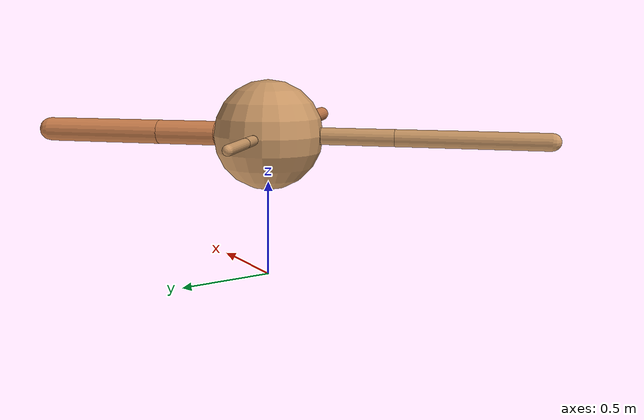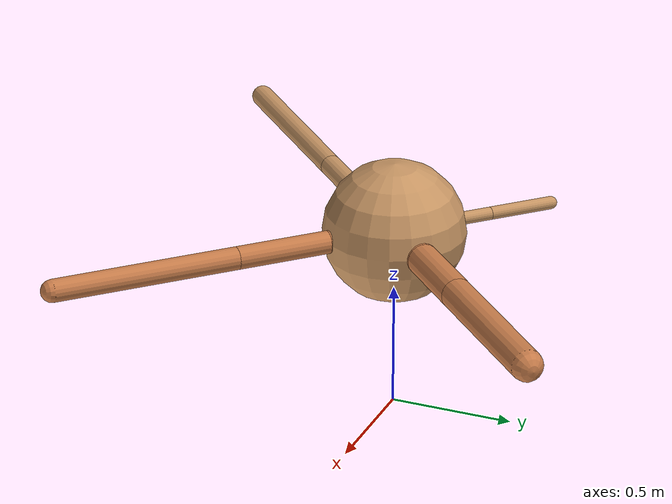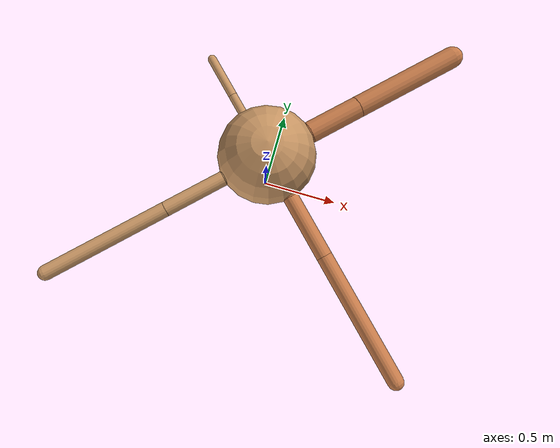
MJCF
<?xml version="1.0" ?>
<mujoco model="ant">

	<compiler angle="degree" coordinate="local" inertiafromgeom="true"/>

	<option integrator="RK4" timestep="0.01"/>

	<custom>

		<numeric data="0.0 0.0 0.55 1.0 0.0 0.0 0.0 0.0 1.0 0.0 -1.0 0.0 -1.0 0.0 1.0" name="init_qpos"/>

	</custom>

	<default>

		<joint armature="1" damping="1" limited="true"/>

		<geom conaffinity="0" condim="3" density="5.0" friction="1.5 0.1 0.1" margin="0.01" rgba="0.8 0.6 0.4 1"/>

	</default>

	<worldbody>

		<body name="torso" pos="0 0 0.75">

			<geom name="torso_geom" pos="0 0 0" size="0.2865469352342213" type="sphere"/>

			<!--joint armature="0" damping="0" limited="false" margin="0.01" name="root" pos="0 0 0" type="free"/-->

			<body name="front_left_leg" pos="0 0 0">

				<geom fromto="0 0 0 0.2 0.2 0" name="aux_1_geom" size="0.06412218794727714" type="capsule" rgba=".8 .5 .3 1"/>

				<body name="aux_1" pos="0.2 0.2 0">

					<joint axis="0 0 1" name="hip_1" pos="0.0 0.0 0.0" range="-40 40" type="hinge"/>

					<geom fromto="0 0 0 0.23002557608374105 0.23002557608374105 0" name="left_leg_geom" size="0.06412218794727714" type="capsule" rgba=".8 .5 .3 1"/>

					<body pos="0.23002557608374105 0.23002557608374105 0" name="front_left_foot">

						<joint axis="-1 1 0" name="ankle_1" pos="0.0 0.0 0.0" range="30 100" type="hinge"/>

						<geom fromto="0 0 0 0.4600511521674821 0.4600511521674821 0" name="left_ankle_geom" size="0.06412218794727714" type="capsule" rgba=".8 .5 .3 1"/>

					</body>

				</body>

			</body>

			<body name="front_right_leg" pos="0 0 0">

				<geom fromto="0 0 0 -0.2 0.2 0" name="aux_2_geom" size="0.025722867016267054" type="capsule"/>

				<body name="aux_2" pos="-0.2 0.2 0">

					<joint axis="0 0 1" name="hip_2" pos="0.0 0.0 0.0" range="-40 40" type="hinge"/>

					<geom fromto="0 0 0 -0.0923912557997996 0.0923912557997996 0" name="right_leg_geom" size="0.025722867016267054" type="capsule"/>

					<body pos="-0.0923912557997996 0.0923912557997996 0" name="front_right_foot">

						<joint axis="1 1 0" name="ankle_2" pos="0.0 0.0 0.0" range="-100 -30" type="hinge"/>

						<geom fromto="0 0 0 -0.1847825115995992 0.1847825115995992 0" name="right_ankle_geom" size="0.025722867016267054" type="capsule"/>

					</body>

				</body>

			</body>

			<body name="left_back_leg" pos="0 0 0">

				<geom fromto="0 0 0 -0.2 -0.2 0" name="aux_3_geom" size="0.04375663014307733" type="capsule"/>

				<body name="aux_3" pos="-0.2 -0.2 0">

					<joint axis="0 0 1" name="hip_3" pos="0.0 0.0 0.0" range="-40 40" type="hinge"/>

					<geom fromto="0 0 0 -0.2632819778351963 -0.2632819778351963 0" name="back_leg_geom" size="0.04375663014307733" type="capsule"/>

					<body pos="-0.2632819778351963 -0.2632819778351963 0" name="left_back_foot">

						<joint axis="-1 1 0" name="ankle_3" pos="0.0 0.0 0.0" range="-100 -30" type="hinge"/>

						<geom fromto="0 0 0 -0.5265639556703926 -0.5265639556703926 0" name="third_ankle_geom" size="0.04375663014307733" type="capsule"/>

					</body>

				</body>

			</body>

			<body name="right_back_leg" pos="0 0 0">

				<geom fromto="0 0 0 0.2 -0.2 0" name="aux_4_geom" size="0.045685017027924255" type="capsule" rgba=".8 .5 .3 1"/>

				<body name="aux_4" pos="0.2 -0.2 0">

					<joint axis="0 0 1" name="hip_4" pos="0.0 0.0 0.0" range="-40 40" type="hinge"/>

					<geom fromto="0 0 0 0.2697661067947373 -0.2697661067947373 0" name="rightback_leg_geom" size="0.045685017027924255" type="capsule" rgba=".8 .5 .3 1"/>

					<body pos="0.2697661067947373 -0.2697661067947373 0" name="right_back_foot">

						<joint axis="1 1 0" name="ankle_4" pos="0.0 0.0 0.0" range="30 100" type="hinge"/>

						<geom fromto="0 0 0 0.5395322135894746 -0.5395322135894746 0" name="fourth_ankle_geom" size="0.045685017027924255" type="capsule" rgba=".8 .5 .3 1"/>

					</body>

				</body>

			</body>

		</body>

	</worldbody>

	<actuator>

		<motor ctrllimited="true" ctrlrange="-1.0 1.0" joint="hip_4" gear="150"/>

		<motor ctrllimited="true" ctrlrange="-1.0 1.0" joint="ankle_4" gear="150"/>

		<motor ctrllimited="true" ctrlrange="-1.0 1.0" joint="hip_1" gear="150"/>

		<motor ctrllimited="true" ctrlrange="-1.0 1.0" joint="ankle_1" gear="150"/>

		<motor ctrllimited="true" ctrlrange="-1.0 1.0" joint="hip_2" gear="150"/>

		<motor ctrllimited="true" ctrlrange="-1.0 1.0" joint="ankle_2" gear="150"/>

		<motor ctrllimited="true" ctrlrange="-1.0 1.0" joint="hip_3" gear="150"/>

		<motor ctrllimited="true" ctrlrange="-1.0 1.0" joint="ankle_3" gear="150"/>

	</actuator>

</mujoco>
